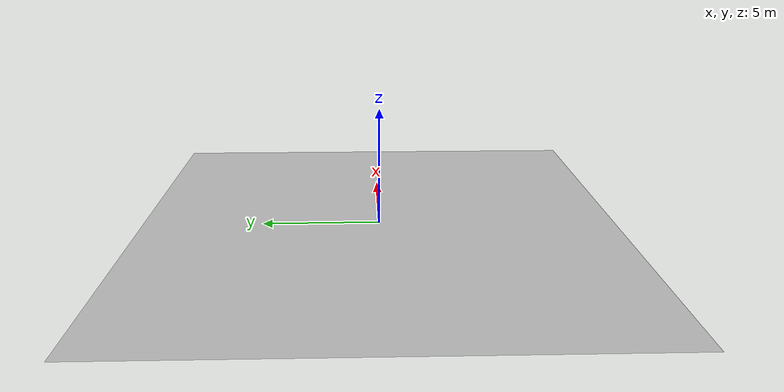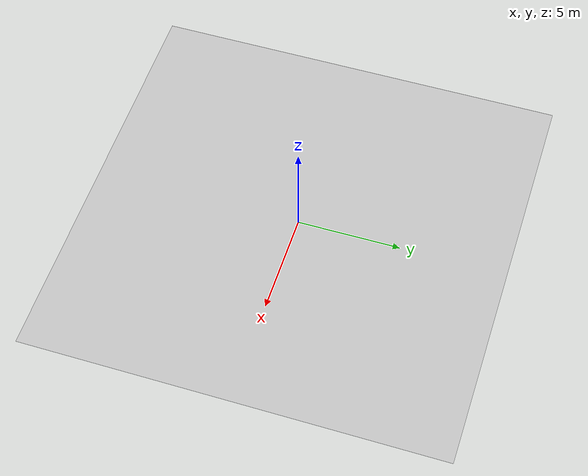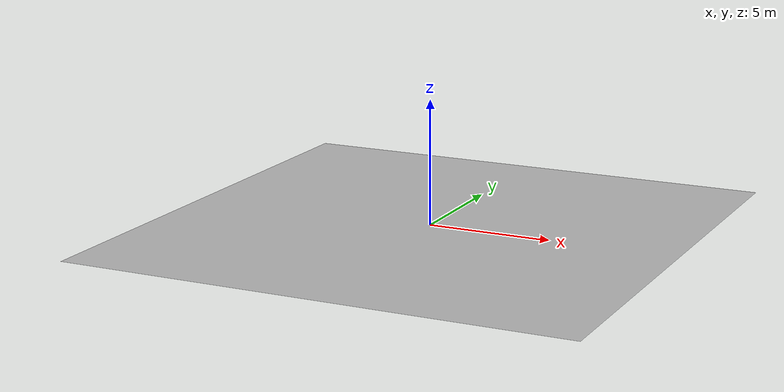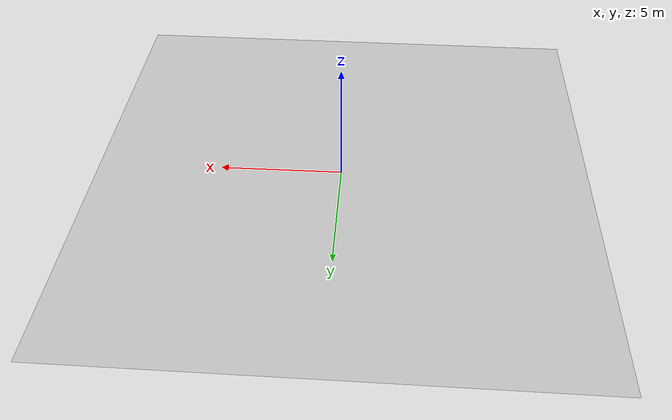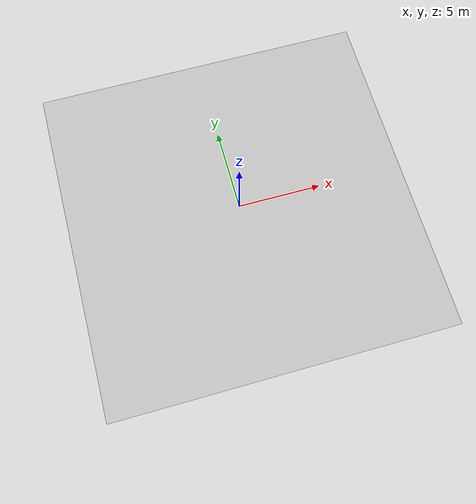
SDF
<?xml version='1.0'?>
<sdf version='1.6'>
  <model name='plane'>
    <static>true</static>
    <link name="plane_link">
      <visual name="plane_visual">
        <geometry>
          <mesh>
            <uri>model://plane/meshes/plane.dae</uri>
          </mesh>
        </geometry>
        <material>
          <script>
            <uri>model://plane/materials/scripts</uri>
            <uri>model://plane/materials/textures</uri>
            <name>209_plane</name>
          </script>
        </material>
      </visual>
      <collision name="plane_collision">
        <geometry>
          <mesh>
            <uri>model://plane/meshes/plane.dae</uri>
          </mesh>
        </geometry>
      </collision>
    </link>
  </model>
</sdf>
